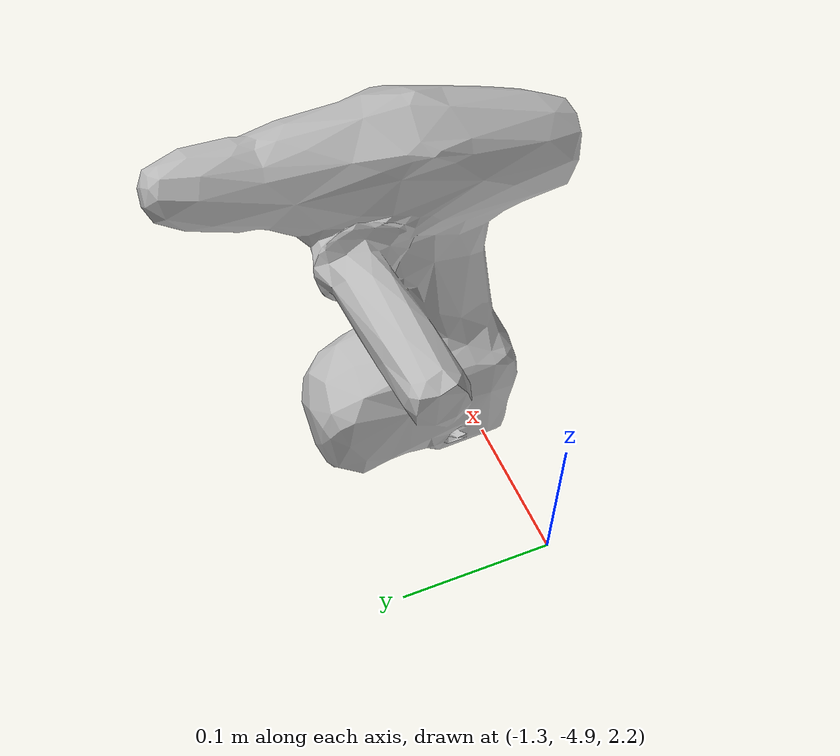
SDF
<?xml version="1.0" ?>
<sdf version="1.5">
  <model name="drill">
    <link name="link">
      <inertial>
        <pose>-1.188616 -4.837664 0.6 0 0 0</pose>
        <inertia>
          <ixx>0.01331127</ixx>
          <ixy>-0.00030365</ixy>
          <ixz>-0.00034148</ixz>
          <iyy>0.01157659</iyy>
          <iyz>0.00088073</iyz>
          <izz>0.00378028</izz>
        </inertia>
        <mass>1.50251902</mass>
      </inertial>
      <collision name="collision">
        <pose>-1.188616 -4.837664 2.13254 0 0 0</pose>
        <geometry>
          <mesh>
            <uri>model://cordless_drill/meshes/cordless_drill.stl</uri>
          </mesh>
        </geometry>
      </collision>
      <visual name="visual">
        <pose>-1.188616 -4.837664 2.13254 0 0 0</pose>
        <geometry>
          <mesh>
            <uri>model://cordless_drill/meshes/cordless_drill.dae</uri>
          </mesh>
        </geometry>
      </visual>
    </link>
  </model>
</sdf>
